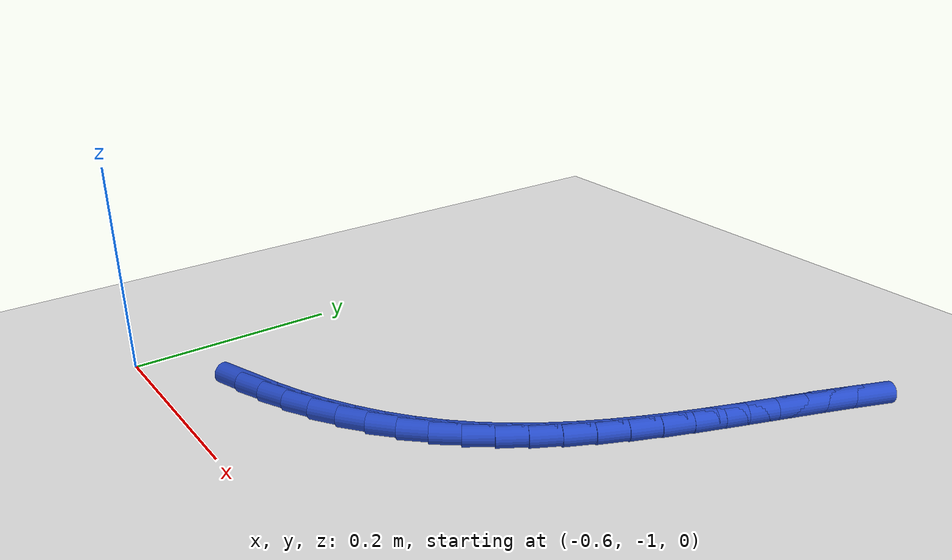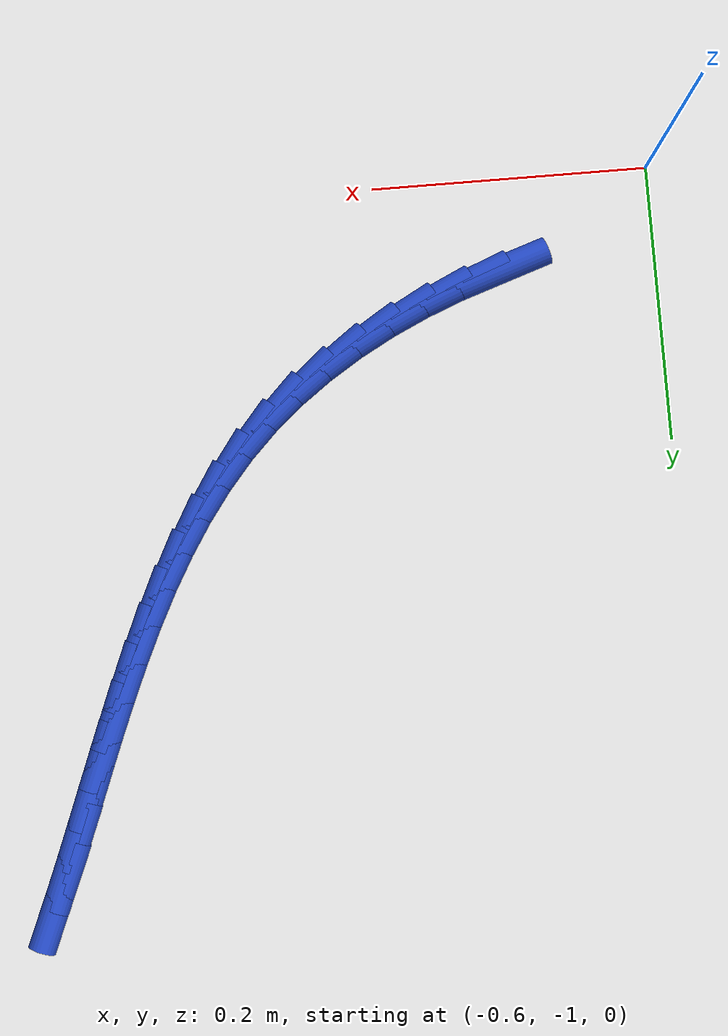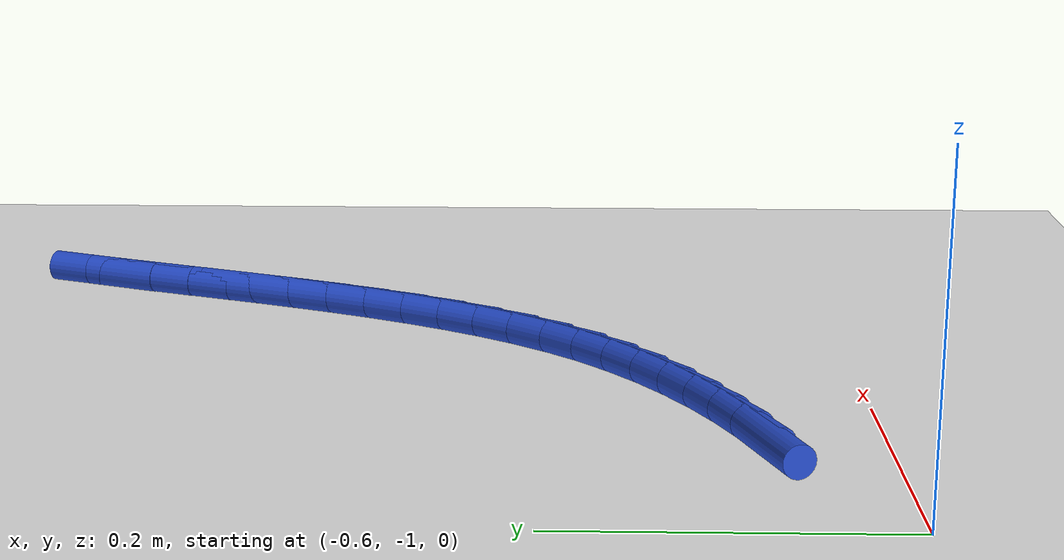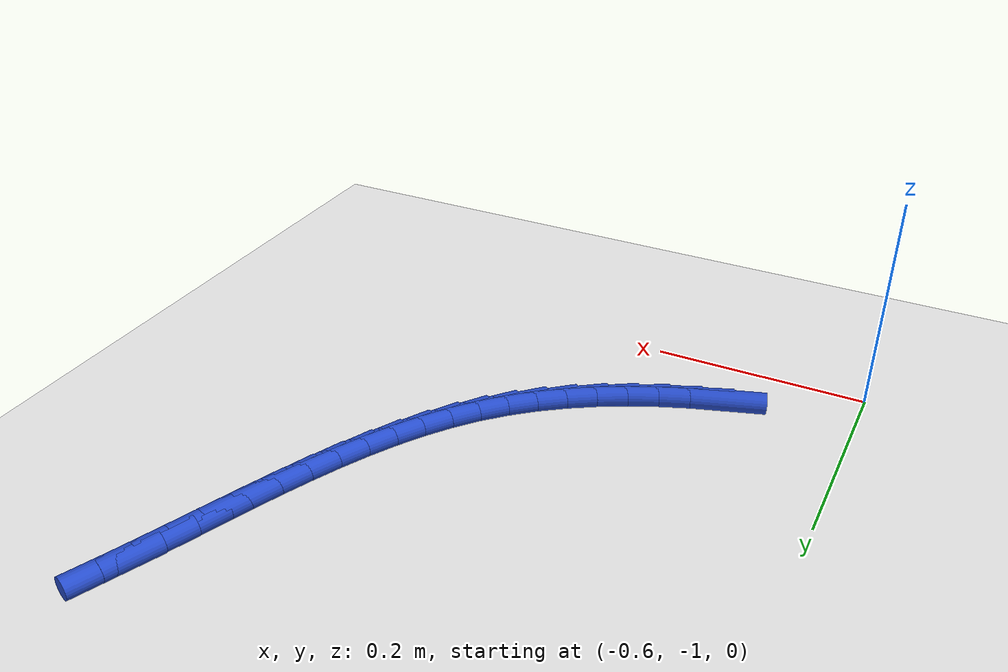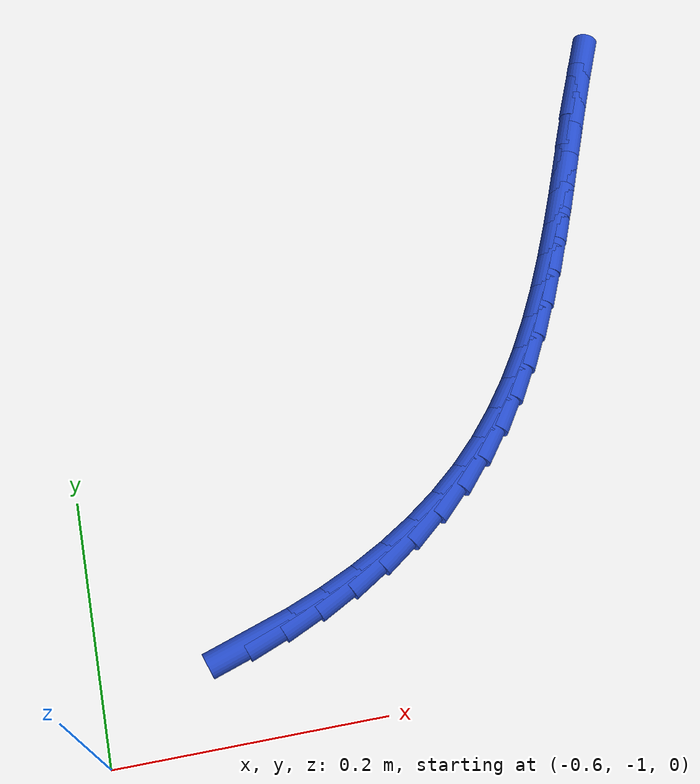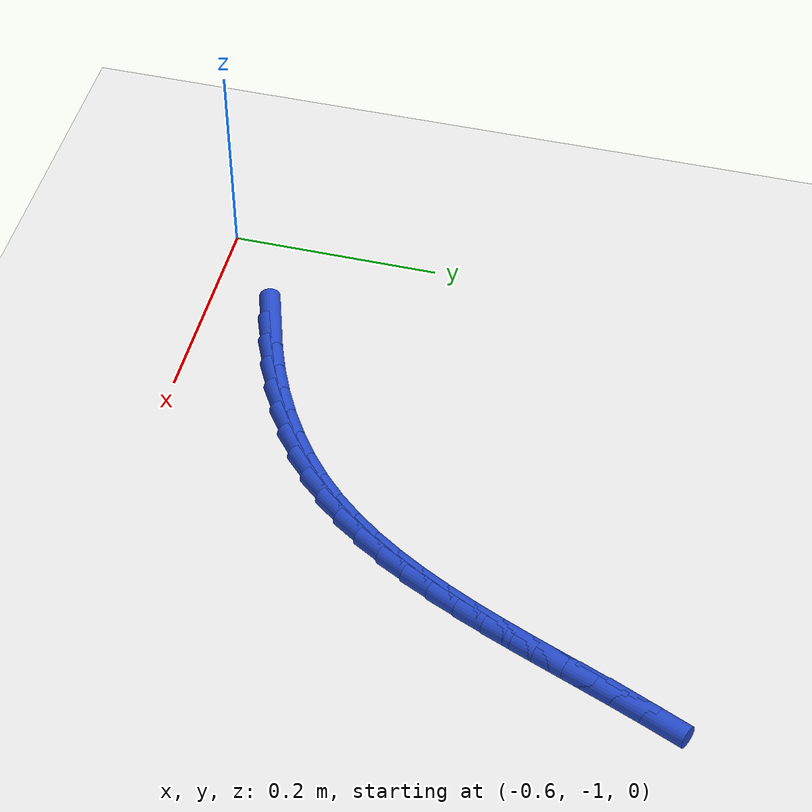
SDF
<sdf version="1.6">
 <world name="default">
  <model name="ground_plane">
   <static>1</static>
   <link name="link">
    <collision name="collision">
     <geometry><plane><normal>0 0 1</normal><size>100 100</size></plane></geometry>
     <surface><friction><ode><mu>100</mu><mu2>50</mu2></ode></friction></surface>
    </collision>
    <visual name="visual">
     <cast_shadows>0</cast_shadows>
     <geometry><plane><normal>0 0 1</normal><size>100 100</size></plane></geometry>
     <material>
      <script><uri>file://media/materials/scripts/gazebo.material</uri><name>Gazebo/WhiteGlow</name></script>
     </material>
    </visual>
   </link>
  </model>
  <model name="line">
   <link name="link_201">
    <pose>-0.4833670182963568 -0.9302798552620516 0.01 0 1.57 0.31960633231743985</pose>
    <collision name="collision">
     <geometry><cylinder><radius>0.01</radius><length>0.08</length></cylinder></geometry>
    </collision>
    <visual name="visual">
     <material>
      <script><name>Gazebo/Blue</name><uri>file://media/materials/scripts/gazebo.material</uri></script>
     </material>
     <geometry><cylinder><radius>0.01</radius><length>0.08</length></cylinder></geometry>
    </visual>
   </link>
   <link name="link_202">
    <pose>-0.4558364143834995 -0.9211685313542779 0.01 0 1.57 0.37593878563762917</pose>
    <collision name="collision">
     <geometry><cylinder><radius>0.01</radius><length>0.08</length></cylinder></geometry>
    </collision>
    <visual name="visual">
     <material>
      <script><name>Gazebo/Blue</name><uri>file://media/materials/scripts/gazebo.material</uri></script>
     </material>
     <geometry><cylinder><radius>0.01</radius><length>0.08</length></cylinder></geometry>
    </visual>
   </link>
   <link name="link_203">
    <pose>-0.42890640012646236 -0.9105389525748437 0.01 0 1.57 0.43488989705266606</pose>
    <collision name="collision">
     <geometry><cylinder><radius>0.01</radius><length>0.08</length></cylinder></geometry>
    </collision>
    <visual name="visual">
     <material>
      <script><name>Gazebo/Blue</name><uri>file://media/materials/scripts/gazebo.material</uri></script>
     </material>
     <geometry><cylinder><radius>0.01</radius><length>0.08</length></cylinder></geometry>
    </visual>
   </link>
   <link name="link_204">
    <pose>-0.4027663857997052 -0.8983955362936902 0.01 0 1.57 0.4971653484319323</pose>
    <collision name="collision">
     <geometry><cylinder><radius>0.01</radius><length>0.08</length></cylinder></geometry>
    </collision>
    <visual name="visual">
     <material>
      <script><name>Gazebo/Blue</name><uri>file://media/materials/scripts/gazebo.material</uri></script>
     </material>
     <geometry><cylinder><radius>0.01</radius><length>0.08</length></cylinder></geometry>
    </visual>
   </link>
   <link name="link_205">
    <pose>-0.37760578167768755 -0.8847426998807577 0.01 0 1.57 0.5634692092734654</pose>
    <collision name="collision">
     <geometry><cylinder><radius>0.01</radius><length>0.08</length></cylinder></geometry>
    </collision>
    <visual name="visual">
     <material>
      <script><name>Gazebo/Blue</name><uri>file://media/materials/scripts/gazebo.material</uri></script>
     </material>
     <geometry><cylinder><radius>0.01</radius><length>0.08</length></cylinder></geometry>
    </visual>
   </link>
   <link name="link_206">
    <pose>-0.3536139980348692 -0.8695848607059875 0.01 0 1.57 0.6344844501411846</pose>
    <collision name="collision">
     <geometry><cylinder><radius>0.01</radius><length>0.08</length></cylinder></geometry>
    </collision>
    <visual name="visual">
     <material>
      <script><name>Gazebo/Blue</name><uri>file://media/materials/scripts/gazebo.material</uri></script>
     </material>
     <geometry><cylinder><radius>0.01</radius><length>0.08</length></cylinder></geometry>
    </visual>
   </link>
   <link name="link_207">
    <pose>-0.3309804451457097 -0.8529264361393205 0.01 0 1.57 0.7108352861888048</pose>
    <collision name="collision">
     <geometry><cylinder><radius>0.01</radius><length>0.08</length></cylinder></geometry>
    </collision>
    <visual name="visual">
     <material>
      <script><name>Gazebo/Blue</name><uri>file://media/materials/scripts/gazebo.material</uri></script>
     </material>
     <geometry><cylinder><radius>0.01</radius><length>0.08</length></cylinder></geometry>
    </visual>
   </link>
   <link name="link_208">
    <pose>-0.3098945332846686 -0.834771843550698 0.01 0 1.57 0.792202693960717</pose>
    <collision name="collision">
     <geometry><cylinder><radius>0.01</radius><length>0.08</length></cylinder></geometry>
    </collision>
    <visual name="visual">
     <material>
      <script><name>Gazebo/Blue</name><uri>file://media/materials/scripts/gazebo.material</uri></script>
     </material>
     <geometry><cylinder><radius>0.01</radius><length>0.08</length></cylinder></geometry>
    </visual>
   </link>
   <link name="link_209">
    <pose>-0.29052251039282767 -0.8151343752871685 0.01 0 1.57 0.8707689290778748</pose>
    <collision name="collision">
     <geometry><cylinder><radius>0.01</radius><length>0.08</length></cylinder></geometry>
    </collision>
    <visual name="visual">
     <material>
      <script><name>Gazebo/Blue</name><uri>file://media/materials/scripts/gazebo.material</uri></script>
     </material>
     <geometry><cylinder><radius>0.01</radius><length>0.08</length></cylinder></geometry>
    </visual>
   </link>
   <link name="link_210">
    <pose>-0.2728134055082251 -0.7941105542045702 0.01 0 1.57 0.941383738204409</pose>
    <collision name="collision">
     <geometry><cylinder><radius>0.01</radius><length>0.08</length></cylinder></geometry>
    </collision>
    <visual name="visual">
     <material>
      <script><name>Gazebo/Blue</name><uri>file://media/materials/scripts/gazebo.material</uri></script>
     </material>
     <geometry><cylinder><radius>0.01</radius><length>0.08</length></cylinder></geometry>
    </visual>
   </link>
   <link name="link_211">
    <pose>-0.2565974172901624 -0.7718424347066093 0.01 0 1.57 1.0033934118017989</pose>
    <collision name="collision">
     <geometry><cylinder><radius>0.01</radius><length>0.08</length></cylinder></geometry>
    </collision>
    <visual name="visual">
     <material>
      <script><name>Gazebo/Blue</name><uri>file://media/materials/scripts/gazebo.material</uri></script>
     </material>
     <geometry><cylinder><radius>0.01</radius><length>0.08</length></cylinder></geometry>
    </visual>
   </link>
   <link name="link_212">
    <pose>-0.2417035335314416 -0.7484725351576952 0.01 0 1.57 1.0566090130283323</pose>
    <collision name="collision">
     <geometry><cylinder><radius>0.01</radius><length>0.08</length></cylinder></geometry>
    </collision>
    <visual name="visual">
     <material>
      <script><name>Gazebo/Blue</name><uri>file://media/materials/scripts/gazebo.material</uri></script>
     </material>
     <geometry><cylinder><radius>0.01</radius><length>0.08</length></cylinder></geometry>
    </visual>
   </link>
   <link name="link_213">
    <pose>-0.2279607420248646 -0.7241433739222376 0.01 0 1.57 1.101129898217753</pose>
    <collision name="collision">
     <geometry><cylinder><radius>0.01</radius><length>0.08</length></cylinder></geometry>
    </collision>
    <visual name="visual">
     <material>
      <script><name>Gazebo/Blue</name><uri>file://media/materials/scripts/gazebo.material</uri></script>
     </material>
     <geometry><cylinder><radius>0.01</radius><length>0.08</length></cylinder></geometry>
    </visual>
   </link>
   <link name="link_214">
    <pose>-0.21519803056323333 -0.6989974693646451 0.01 0 1.57 1.1372186713740648</pose>
    <collision name="collision">
     <geometry><cylinder><radius>0.01</radius><length>0.08</length></cylinder></geometry>
    </collision>
    <visual name="visual">
     <material>
      <script><name>Gazebo/Blue</name><uri>file://media/materials/scripts/gazebo.material</uri></script>
     </material>
     <geometry><cylinder><radius>0.01</radius><length>0.08</length></cylinder></geometry>
    </visual>
   </link>
   <link name="link_215">
    <pose>-0.20324438693934951 -0.6731773398493265 0.01 0 1.57 1.165201239966549</pose>
    <collision name="collision">
     <geometry><cylinder><radius>0.01</radius><length>0.08</length></cylinder></geometry>
    </collision>
    <visual name="visual">
     <material>
      <script><name>Gazebo/Blue</name><uri>file://media/materials/scripts/gazebo.material</uri></script>
     </material>
     <geometry><cylinder><radius>0.01</radius><length>0.08</length></cylinder></geometry>
    </visual>
   </link>
   <link name="link_216">
    <pose>-0.19192879894601564 -0.6468255037406921 0.01 0 1.57 1.1853951152032287</pose>
    <collision name="collision">
     <geometry><cylinder><radius>0.01</radius><length>0.08</length></cylinder></geometry>
    </collision>
    <visual name="visual">
     <material>
      <script><name>Gazebo/Blue</name><uri>file://media/materials/scripts/gazebo.material</uri></script>
     </material>
     <geometry><cylinder><radius>0.01</radius><length>0.08</length></cylinder></geometry>
    </visual>
   </link>
   <link name="link_217">
    <pose>-0.1810802543760334 -0.620084479403151 0.01 0 1.57 1.198062123670729</pose>
    <collision name="collision">
     <geometry><cylinder><radius>0.01</radius><length>0.08</length></cylinder></geometry>
    </collision>
    <visual name="visual">
     <material>
      <script><name>Gazebo/Blue</name><uri>file://media/materials/scripts/gazebo.material</uri></script>
     </material>
     <geometry><cylinder><radius>0.01</radius><length>0.08</length></cylinder></geometry>
    </visual>
   </link>
   <link name="link_218">
    <pose>-0.1705277410222047 -0.593096785201112 0.01 0 1.57 1.2033796279536095</pose>
    <collision name="collision">
     <geometry><cylinder><radius>0.01</radius><length>0.08</length></cylinder></geometry>
    </collision>
    <visual name="visual">
     <material>
      <script><name>Gazebo/Blue</name><uri>file://media/materials/scripts/gazebo.material</uri></script>
     </material>
     <geometry><cylinder><radius>0.01</radius><length>0.08</length></cylinder></geometry>
    </visual>
   </link>
   <link name="link_219">
    <pose>-0.16010024667733153 -0.5660049394989841 0.01 0 1.57 1.2014249564945996</pose>
    <collision name="collision">
     <geometry><cylinder><radius>0.01</radius><length>0.08</length></cylinder></geometry>
    </collision>
    <visual name="visual">
     <material>
      <script><name>Gazebo/Blue</name><uri>file://media/materials/scripts/gazebo.material</uri></script>
     </material>
     <geometry><cylinder><radius>0.01</radius><length>0.08</length></cylinder></geometry>
    </visual>
   </link>
   <link name="link_220">
    <pose>-0.1496267591342158 -0.5389514606611768 0.01 0 1.57 1.1921694584742197</pose>
    <collision name="collision">
     <geometry><cylinder><radius>0.01</radius><length>0.08</length></cylinder></geometry>
    </collision>
    <visual name="visual">
     <material>
      <script><name>Gazebo/Blue</name><uri>file://media/materials/scripts/gazebo.material</uri></script>
     </material>
     <geometry><cylinder><radius>0.01</radius><length>0.08</length></cylinder></geometry>
    </visual>
   </link>
   <link name="link_221">
    <pose>-0.13893626618565955 -0.5120788670520996 0.01 0 1.57 1.1758621234679076</pose>
    <collision name="collision">
     <geometry><cylinder><radius>0.01</radius><length>0.08</length></cylinder></geometry>
    </collision>
    <visual name="visual">
     <material>
      <script><name>Gazebo/Blue</name><uri>file://media/materials/scripts/gazebo.material</uri></script>
     </material>
     <geometry><cylinder><radius>0.01</radius><length>0.08</length></cylinder></geometry>
    </visual>
   </link>
  </model>
 </world>
</sdf>
